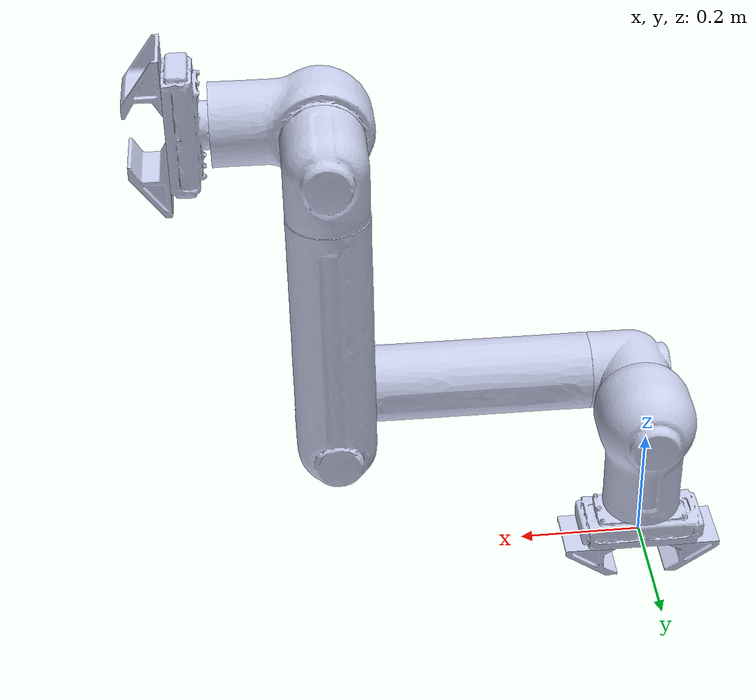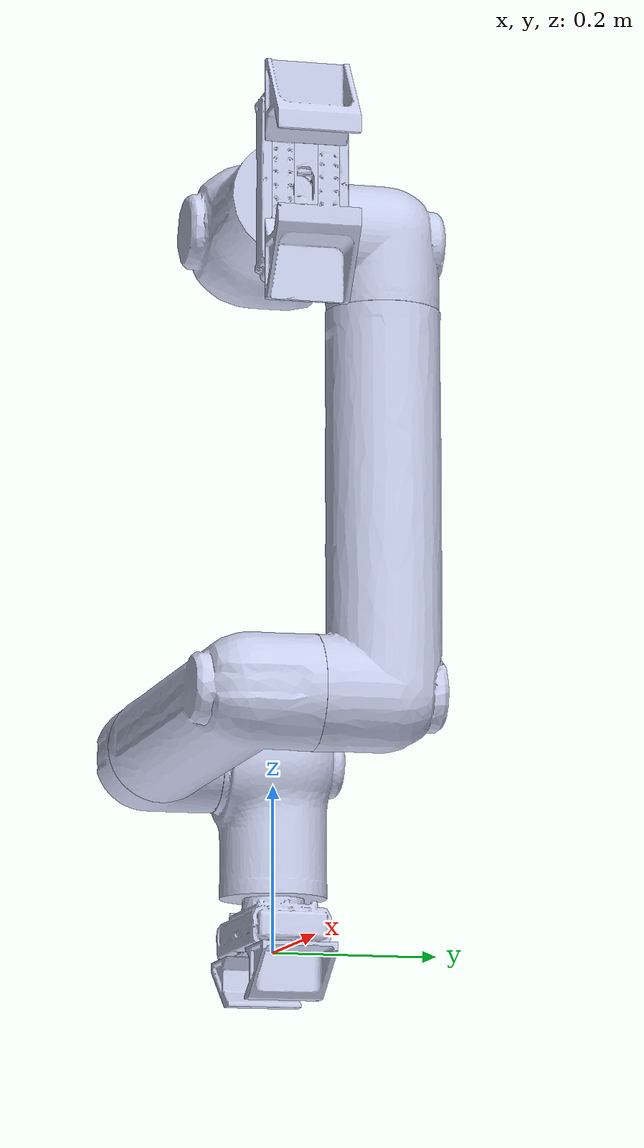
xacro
<?xml version="1.0"?>
<robot xmlns:xacro="http://www.ros.org/wiki/xacro" name="hero_7dofm1">

<xacro:property name="ThisPackage" value="ros2_m_hero_pkg" />

<xacro:include filename="hero_7dof_arm.xacro"/>

<xacro:get_hero prefix = "leg3"
off_base_link_link2 = "-1.5968164926267214"
off_link2_link3 = "-1.5249186659861529"
off_link3_link4 = "-1.1246189568997114"
off_link4_link5 = "-1.2173329162057398"
off_link5_link6 = "-0.4995871839710359"
off_link6_link7 = "-1.6035269564465078"
off_link7_link8 = "-0.8002183286638307"
/>

</robot>

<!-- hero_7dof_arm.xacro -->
<robot xmlns:xacro="http://www.ros.org/wiki/xacro" name="hero_7dof_arm">

    <xacro:property name="ThisPackage" value="ros2_m_hero_pkg" />
    <xacro:property name="MeshPath" value="package://${ThisPackage}/meshes/hero_7dof_arm/optimised" />

    <xacro:property name="mesh_extension" value="STL" />

    <xacro:macro name="get_hero" params="prefix off_base_link_link2 off_link2_link3 off_link3_link4 off_link4_link5 off_link5_link6 off_link6_link7 off_link7_link8">

    <xacro:property name="max_base_link_link2" value="${-1 * off_base_link_link2}" />
    <xacro:property name="max_link2_link3" value="${-1 * off_link2_link3}" />
    <xacro:property name="max_link3_link4" value="${-1 * off_link3_link4}" />
    <xacro:property name="max_link4_link5" value="${-1 * off_link4_link5}" />
    <xacro:property name="max_link5_link6" value="${-1 * off_link5_link6}" />
    <xacro:property name="max_link6_link7" value="${-1 * off_link6_link7}" />
    <xacro:property name="max_link7_link8" value="${-1 * off_link7_link8}" />

    <xacro:property name="min_base_link_link2" value="${-1 * off_base_link_link2 - pi}" />
    <xacro:property name="min_link2_link3" value="${-1 * off_link2_link3 - pi}" />
    <xacro:property name="min_link3_link4" value="${-1 * off_link3_link4 - pi}" />
    <xacro:property name="min_link4_link5" value="${-1 * off_link4_link5 - pi}" />
    <xacro:property name="min_link5_link6" value="${-1 * off_link5_link6 - pi}" />
    <xacro:property name="min_link6_link7" value="${-1 * off_link6_link7 - pi}" />
    <xacro:property name="min_link7_link8" value="${-1 * off_link7_link8 - pi}" />

    <xacro:property name="max_vel" value="0.15" />

    <!-- PREFIX BELOW IS FOR TESTING. TODO: REMOVE -->

    <link name="${prefix}gripper1">
    </link>

    <joint name="${prefix}gripper1_fixed_joint" type="fixed">
    <origin xyz="0 0 0.075" rpy="${pi} 0 ${0}" />
        <parent link="${prefix}gripper1" />
        <child link="${prefix}gripper1_base"/>
    </joint>

    <link name="${prefix}gripper1_base">
        <inertial>
            <origin xyz="0 0 0.034092" rpy="0 0 0" />
            <mass value="1" />
            <inertia ixx="0.00037818" ixy="-7.3501E-08" ixz="9.8348E-07" iyy="0.0011423" iyz="1.9396E-08" izz="0.0012608" />
        </inertial>
        <visual>
            <origin xyz="0 0 0.01" rpy="0 0 0" />
            <geometry>
                <mesh filename="${MeshPath}/gripper_base.${mesh_extension}" />
            </geometry>
            <material name="">
                <color rgba="0.79216 0.81961 0.93333 1" />
            </material>
        </visual>
        <collision>
            <origin xyz="0 0 0.01" rpy="0 0 0" />
            <geometry>
                <mesh filename="${MeshPath}/gripper_base.${mesh_extension}" />
            </geometry>
        </collision>
    </link>
    <link name="${prefix}gripper1_jaw_left">
        <inertial>
            <origin xyz="0.0085205 -0.015122 -0.048716" rpy="0 0 0" />
            <mass value="0.57" />
            <inertia ixx="0.000401" ixy="3.9995E-05" ixz="8.1004E-05" iyy="0.00040867" iyz="-6.6046E-05" izz="0.0002301" />
        </inertial>
        <visual>
            <origin xyz="0 0 0" rpy="0 0 0" />
            <geometry>
                <mesh filename="${MeshPath}/gripper_jaw_left.${mesh_extension}" />
            </geometry>
            <material name="">
                <color rgba="0.79216 0.81961 0.93333 1" />
            </material>
        </visual>
        <collision>
            <origin xyz="0 0 0" rpy="0 0 0" />
            <geometry>
                <mesh filename="${MeshPath}/gripper_jaw_left.${mesh_extension}" />
            </geometry>
        </collision>
    </link>
    <joint name="${prefix}grip1" type="prismatic">
        <origin xyz="0 -0.025 0.075" rpy="${-pi/2} ${-pi/2} ${-pi/2}" />
        <parent link="${prefix}gripper1_base" />
        <child link="${prefix}gripper1_jaw_left" />
        <axis xyz="0 0 -1" />
        <limit lower="-9999" upper="9999" effort="9999" velocity="${max_vel}" />
    </joint>

    <link name="${prefix}gripper1_jaw_right">
        <inertial>
            <origin xyz="0.0084246 -0.015024 -0.048812" rpy="0 0 0" />
            <mass value="0.57" />
            <inertia ixx="0.00040173" ixy="4.0342E-05" ixz="8.0663E-05" iyy="0.00040938" iyz="-6.5693E-05" izz="0.00023081" />
        </inertial>
        <visual>
            <origin xyz="0 0 0" rpy="0 0 0" />
            <geometry>
                <mesh filename="${MeshPath}/gripper_jaw_right.${mesh_extension}" />
            </geometry>
            <material name="">
                <color rgba="0.79216 0.81961 0.93333 1" />
            </material>
        </visual>
        <collision>
            <origin xyz="0 0 0" rpy="0 0 0" />
            <geometry>
                <mesh filename="${MeshPath}/gripper_jaw_right.${mesh_extension}" />
            </geometry>
        </collision>
    </link>
    <joint name="${prefix}grip1bis" type="prismatic">
        <origin xyz="0 0.025 0.075" rpy="${pi/2} ${-pi/2} ${-pi/2}" />
        <parent link="${prefix}gripper1_base" />
        <child link="${prefix}gripper1_jaw_right" />
        <axis xyz="0 0 -1" />
        <limit lower="-9999" upper="9999" effort="9999" velocity="${max_vel}" />
        <mimic joint="${prefix}grip1" multiplier="1" offset="0" />
    </joint>

    <link name="${prefix}link1">
        <inertial>
            <origin xyz="0 -0.026961 0.07079" rpy="0 0 0" />
            <mass value="2.28" />
            <inertia ixx="0.00036861" ixy="-1.2304E-10" ixz="-1.7786E-19" iyy="0.00051212" iyz="5.2003E-19" izz="0.00058121" />
        </inertial>
        <visual>
            <origin xyz="0 0 0" rpy="0 0 0" />
            <geometry>
                <mesh filename="${MeshPath}/link1.${mesh_extension}" />
            </geometry>
            <material name="">
                <color rgba="0.79216 0.81961 0.93333 1" />
            </material>
        </visual>
        <collision>
            <origin xyz="0 0 0" rpy="0 0 0" />
            <geometry>
                <mesh filename="${MeshPath}/link1.${mesh_extension}" />
            </geometry>
        </collision>
    </link>
    <joint name="${prefix}joint1" type="continuous">
    <origin xyz="0 0 0.011" rpy="${pi} 0 ${0}" />
        <parent link="${prefix}gripper1_base" />
        <child link="${prefix}link1" />
        <axis xyz="0 0 1" />
        <limit lower="-9999" upper="9999" effort="9999" velocity="${max_vel}" />
    </joint>
    <link name="${prefix}link2">
        <inertial>
            <origin xyz="0.032078 0 0.041065" rpy="0 0 0" />
            <mass value="1.93" />
            <inertia ixx="0.00044657" ixy="7.7738E-21" ixz="2.4867E-23" iyy="0.00030306" iyz="4.0296E-20" izz="0.00045568" />
        </inertial>
        <visual>
            <origin xyz="0 0 0" rpy="0 0 0" />
            <geometry>
                <mesh filename="${MeshPath}/link2.${mesh_extension}" />
            </geometry>
            <material name="">
                <color rgba="0.79216 0.81961 0.93333 1" />
            </material>
        </visual>
        <collision>
            <origin xyz="0 0 0" rpy="0 0 0" />
            <geometry>
                <mesh filename="${MeshPath}/link2.${mesh_extension}" />
            </geometry>
        </collision>
    </link>
    <joint name="${prefix}joint2" type="continuous">
        <origin xyz="0 -0.0729017560494423 0.1646" rpy="${pi/2} 0 0" />
        <parent link="${prefix}link1" />
        <child link="${prefix}link2" />
        <axis xyz="0 0 1" />
        <limit lower="-9999" upper="9999" effort="9999" velocity="${max_vel}" />
    </joint>
    <link name="${prefix}link3">
        <inertial>
            <origin xyz="0 0.032 0.21559" rpy="0 0 0" />
            <mass value="4.82" />
            <inertia ixx="0.00043746" ixy="-6.0916E-09" ixz="5.7927E-15" iyy="0.00064389" iyz="-1.5683E-11" izz="0.00065006" />
        </inertial>
        <visual>
            <origin xyz="0 0 0" rpy="0 0 0" />
            <geometry>
                <mesh filename="${MeshPath}/link3.${mesh_extension}" />
            </geometry>
            <material name="">
                <color rgba="0.79216 0.81961 0.93333 1" />
            </material>
        </visual>
        <collision>
            <origin xyz="0 0 0" rpy="0 0 0" />
            <geometry>
                <mesh filename="${MeshPath}/link3.${mesh_extension}" />
            </geometry>
        </collision>
    </link>
    <joint name="${prefix}joint3" type="continuous">
        <origin xyz="0.0728992993685218 0 0.0794000460598" rpy="${-pi/2} 0 ${-pi/2}" />
        <parent link="${prefix}link2" />
        <child link="${prefix}link3" />
        <axis xyz="0 0 1" />
        <limit lower="-9999" upper="9999" effort="9999" velocity="${max_vel}" />
    </joint>
    <link name="${prefix}link4">
        <inertial>
            <origin xyz="0 0.21057 -0.043825" rpy="0 0 0" />
            <mass value="4.41" />
            <inertia ixx="0.00044447" ixy="7.218E-10" ixz="2.0385E-10" iyy="0.00065707" iyz="2.1592E-11" izz="0.00065707" />
        </inertial>
        <visual>
            <origin xyz="0 0 0" rpy="0 0 0" />
            <geometry>
                <mesh filename="${MeshPath}/link4.${mesh_extension}" />
            </geometry>
            <material name="">
                <color rgba="0.79216 0.81961 0.93333 1" />
            </material>
        </visual>
        <collision>
            <origin xyz="0 0 0" rpy="0 0 0" />
            <geometry>
                <mesh filename="${MeshPath}/link4.${mesh_extension}" />
            </geometry>
        </collision>
    </link>
    <joint name="${prefix}joint4" type="continuous">
        <origin xyz="0 0.073 0.43" rpy="${pi/2} ${-pi/2} 0" />
        <parent link="${prefix}link3" />
        <child link="${prefix}link4" />
        <axis xyz="0 0 -1" />
        <limit lower="-9999" upper="9999" effort="9999" velocity="${max_vel}" />
    </joint>
    <link name="${prefix}link5">
        <inertial>
            <origin xyz="0 -0.032079 0.041064" rpy="0 0 0" />
            <mass value="1.93" />
            <inertia ixx="0.00030306" ixy="-1.5056E-14" ixz="5.1818E-10" iyy="0.00044657" iyz="-2.6967E-10" izz="0.00045568" />
        </inertial>
        <visual>
            <origin xyz="0 0 0" rpy="0 0 0" />
            <geometry>
                <mesh filename="${MeshPath}/link5.${mesh_extension}" />
            </geometry>
            <material name="">
                <color rgba="0.79216 0.81961 0.93333 1" />
            </material>
        </visual>
        <collision>
            <origin xyz="0 0 0" rpy="0 0 0" />
            <geometry>
                <mesh filename="${MeshPath}/link5.${mesh_extension}" />
            </geometry>
        </collision>
    </link>
    <joint name="${prefix}joint5" type="continuous">
        <origin xyz="0 0.43 -0.0794" rpy="${-pi/2} 0 0" />
        <parent link="${prefix}link4" />
        <child link="${prefix}link5" />
        <axis xyz="0 0 1" />
        <limit lower="-9999" upper="9999" effort="9999" velocity="${max_vel}" />
    </joint>
    <link name="${prefix}link6">
        <inertial>
            <origin xyz="0.09381 0 0.045941" rpy="0 0 0" />
            <mass value="2.28" />
            <inertia ixx="0.00058121" ixy="1.0036E-09" ixz="1.3853E-16" iyy="0.00036861" iyz="3.8298E-21" izz="0.00051212" />
        </inertial>
        <visual>
            <origin xyz="0 0 0" rpy="0 0 0" />
            <geometry>
                <mesh filename="${MeshPath}/link6.${mesh_extension}" />
            </geometry>
            <material name="">
                <color rgba="0.79216 0.81961 0.93333 1" />
            </material>
        </visual>
        <collision>
            <origin xyz="0 0 0" rpy="0 0 0" />
            <geometry>
                <mesh filename="${MeshPath}/link6.${mesh_extension}" />
            </geometry>
        </collision>
    </link>
    <joint name="${prefix}joint6" type="continuous">
        <origin xyz="0 -0.073 0.0793978875028697" rpy="${pi/2} 0 0" />
        <parent link="${prefix}link5" />
        <child link="${prefix}link6" />
        <axis xyz="0 0 1" />
        <limit lower="-9999" upper="9999" effort="9999" velocity="${max_vel}" />
    </joint>
    <link name="${prefix}gripper2_base">
        <inertial>
            <origin xyz="0 0 0.034092" rpy="0 0 0" />
            <mass value="1" />
            <inertia ixx="0.00037818" ixy="-7.3501E-08" ixz="9.8348E-07" iyy="0.0011423" iyz="1.9396E-08" izz="0.0012608" />
        </inertial>
        <visual>
            <origin xyz="0 0 0" rpy="0 0 0" />
            <geometry>
                <mesh filename="${MeshPath}/gripper_base.${mesh_extension}" />
            </geometry>
            <material name="">
                <color rgba="0.79216 0.81961 0.93333 1" />
            </material>
        </visual>
        <collision>
            <origin xyz="0 0 0" rpy="0 0 0" />
            <geometry>
                <mesh filename="${MeshPath}/gripper_base.${mesh_extension}" />
            </geometry>
        </collision>
    </link>
    <joint name="${prefix}joint7" type="continuous">
    <origin xyz="0.1646 0 0.072902" rpy="${-pi/2} 0 ${-pi/2}" />
        <parent link="${prefix}link6" />
        <child link="${prefix}gripper2_base" />
        <axis xyz="0 0 1" />
        <limit lower="-9999" upper="9999" effort="9999" velocity="${max_vel}" />
    </joint>
    <link name="${prefix}gripper2_jaw_left">
        <inertial>
            <origin xyz="0.0085205 -0.015122 -0.048716" rpy="0 0 0" />
            <mass value="0.57" />
            <inertia ixx="0.000401" ixy="3.9995E-05" ixz="8.1004E-05" iyy="0.00040867" iyz="-6.6046E-05" izz="0.0002301" />
        </inertial>
        <visual>
            <origin xyz="0 0 0" rpy="0 0 0" />
            <geometry>
                <mesh filename="${MeshPath}/gripper_jaw_left.${mesh_extension}" />
            </geometry>
            <material name="">
                <color rgba="0.79216 0.81961 0.93333 1" />
            </material>
        </visual>
        <collision>
            <origin xyz="0 0 0" rpy="0 0 0" />
            <geometry>
                <mesh filename="${MeshPath}/gripper_jaw_left.${mesh_extension}" />
            </geometry>
        </collision>
    </link>
    <joint name="${prefix}grip2" type="prismatic">
        <origin xyz="0 -0.025 0.065" rpy="${-pi/2} ${-pi/2} ${-pi/2}" />
        <parent link="${prefix}gripper2_base" />
        <child link="${prefix}gripper2_jaw_left" />
        <axis xyz="0 0 -1" />
        <limit lower="-9999" upper="9999" effort="9999" velocity="${max_vel}" />
    </joint>
    <link name="${prefix}gripper2_jaw_right">
        <inertial>
            <origin xyz="0.0084246 -0.015024 -0.048812" rpy="0 0 0" />
            <mass value="0.57" />
            <inertia ixx="0.00040173" ixy="4.0342E-05" ixz="8.0663E-05" iyy="0.00040938" iyz="-6.5693E-05" izz="0.00023081" />
        </inertial>
        <visual>
            <origin xyz="0 0 0" rpy="0 0 0" />
            <geometry>
                <mesh filename="${MeshPath}/gripper_jaw_right.${mesh_extension}" />
            </geometry>
            <material name="">
                <color rgba="0.79216 0.81961 0.93333 1" />
            </material>
        </visual>
        <collision>
            <origin xyz="0 0 0" rpy="0 0 0" />
            <geometry>
                <mesh filename="${MeshPath}/gripper_jaw_right.${mesh_extension}" />
            </geometry>
        </collision>
    </link>
    <joint name="${prefix}grip2bis" type="prismatic">
        <origin xyz="0 0.025 0.065" rpy="${pi/2} ${-pi/2} ${-pi/2}" />
        <parent link="${prefix}gripper2_base" />
        <child link="${prefix}gripper2_jaw_right" />
        <axis xyz="0 0 -1" />
        <limit lower="-9999" upper="9999" effort="9999" velocity="${max_vel}" />
        <mimic joint="${prefix}grip2" multiplier="1" offset="0" />
    </joint>
    <link name="${prefix}gripper2">
    </link>

    <joint name="${prefix}gripper2_fixed_joint" type="fixed">
    <origin xyz="0 0 0.065" rpy="0 ${pi} ${0}" />
        <parent link="${prefix}gripper2_base" />
        <child link="${prefix}gripper2" />
    </joint>

    <link name="${prefix}gripper2_straight">
    </link>
    <joint name="${prefix}gripper2_fix_to_straight" type="fixed">
    <origin xyz="0 0 0" rpy="0 ${pi/2} 0" />
        <parent link="${prefix}gripper2" />
        <child link="${prefix}gripper2_straight" />
    </joint>

    </xacro:macro>
</robot>
